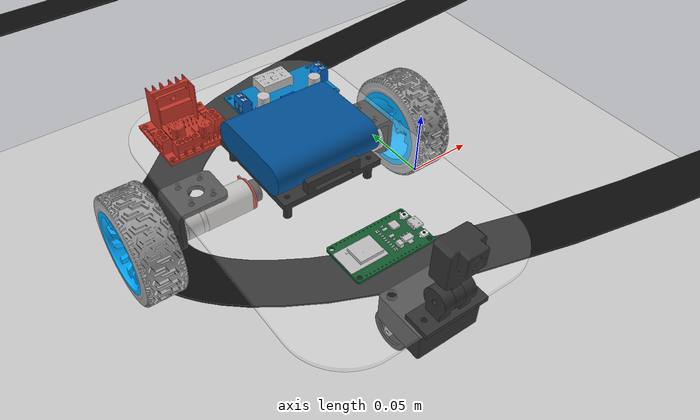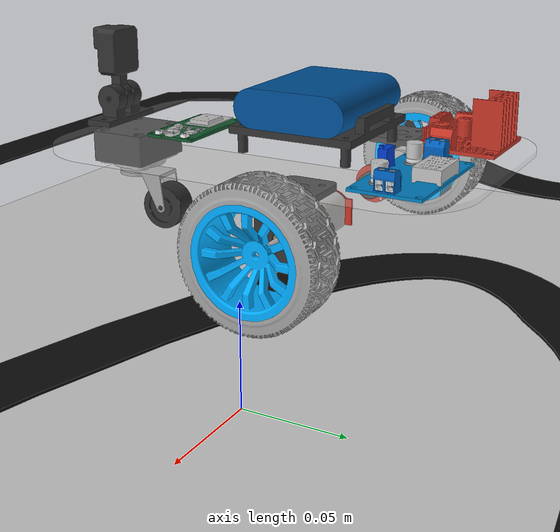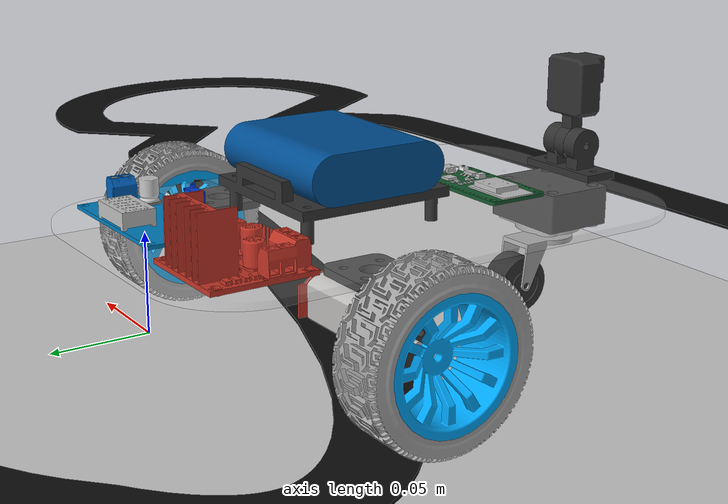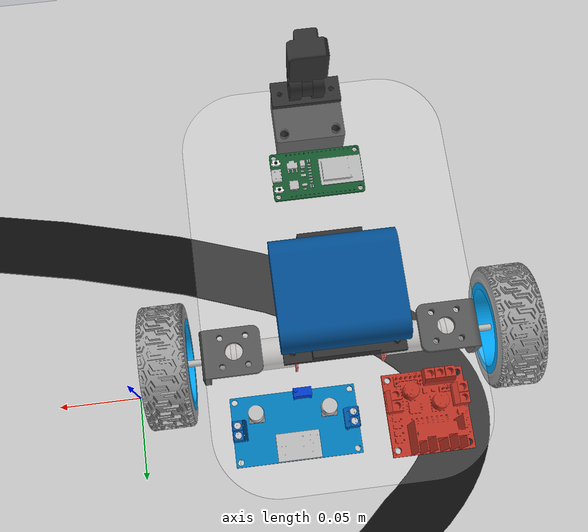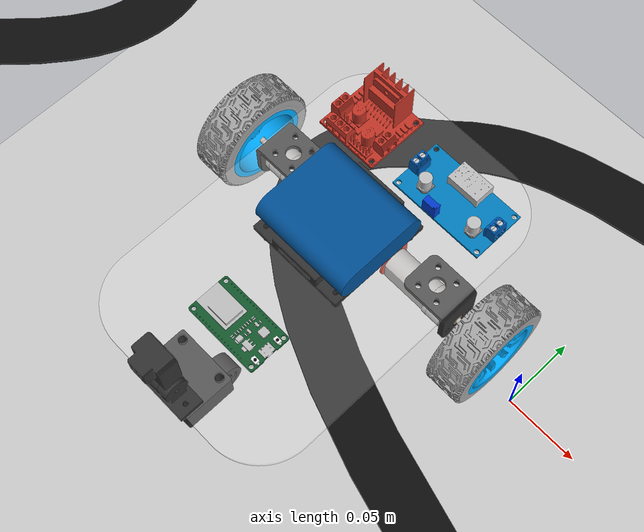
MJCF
<mujoco model="rover_MediumCompTrack">
  <!-- Rover body/mesh/joint/camera tree compiled from rover.urdf -->
  <include file="rover.xml"/>
  <!-- Track converted from the Webots PROTO by scripts/import_webots_track.py -->
  <include file="../../objects/tracks/MediumCompTrack.xml"/>

  <option integrator="implicitfast"/>

  <asset>
    <texture name="skybox" type="skybox" builtin="gradient"
             rgb1="0.75 0.80 0.86" rgb2="0.55 0.62 0.70" width="256" height="256"/>
  </asset>

  <worldbody>
    <light diffuse=".8 .8 .8" pos="0 0 3" dir="0 0 -1"/>
    <geom name="floor" type="plane" size="6 6 0.1" rgba=".8 .8 .8 1"/>
  </worldbody>

  <sensor>
    <!-- Declared so MuJoCo's viewer can plot them live, and so read_telemetry() works on every
         track scene rather than only the generated ones. -->
    <jointvel name="left_wheel_speed" joint="left_axle"/>
    <jointvel name="right_wheel_speed" joint="right_axle"/>
    <velocimeter name="base_velocity" site="base_imu"/>
  </sensor>

  <actuator>
    <velocity name="left_wheel_motor" joint="left_axle" kv="0.2" ctrlrange="-10 10"/>
    <velocity name="right_wheel_motor" joint="right_axle" kv="0.2" ctrlrange="-10 10"/>
  </actuator>
</mujoco>

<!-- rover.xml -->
<!-- Generated using onshape-to-robot -->
<!-- Onshape https://cad.onshape.com/documents/b96fba38d2ae45c4cf890061/w/5fb0397f3be015e9540849c1/e/012331fafbc1f855042645e5 -->
<mujoco model="C:\Users\rapan\OneDrive\Documents\mujoco\rover">
  <compiler angle="radian" meshdir="meshes" autolimits="true"/>
  <default>
    <default class="C:\Users\rapan\OneDrive\Documents\mujoco\rover">
      <joint frictionloss="0.1" armature="0.005"/>
      <position kp="50" dampratio="1"/>
      <default class="visual">
        <geom type="mesh" contype="0" conaffinity="0" group="2"/>
      </default>
      <default class="collision">
        <geom group="3"/>
      </default>
    </default>
  </default>
  <worldbody>
    <!-- Link tt_motor -->
    <body name="tt_motor" pos="0 0 0" quat="1 0 0 0" childclass="C:\Users\rapan\OneDrive\Documents\mujoco\rover">
      <freejoint name="tt_motor_freejoint"/>
      <inertial pos="-0.121228 -0.032057 0.105597" mass="0.130393" fullinertia="0.000131571 5.33375e-05 0.000170509 1.35524e-07 1.6807e-08 -9.70242e-06"/>
      <!-- Part bracket -->
      <geom name="bracket_visual" type="mesh" class="visual" pos="-0.151412 0.03104 0.081501" quat="0.707107 0.707107 0.000612456 0.000612456" mesh="bracket" material="bracket_material"/>
      <!-- Part battery_pack -->
      <geom name="battery_pack_visual" type="mesh" class="visual" pos="-0.0878099 0.015028 0.166514" quat="0.500433 -0.499567 -0.500433 -0.499567" mesh="battery_pack" material="battery_pack_material"/>
      <!-- Part bracket_2 -->
      <geom name="bracket_2_visual" type="mesh" class="visual" pos="-0.0911337 -0.0440308 0.081501" quat="0.000612456 0.000612456 -0.707107 -0.707107" mesh="bracket" material="bracket_material"/>
      <!-- Part camera_stand -->
      <geom name="camera_stand_visual" type="mesh" class="visual" pos="-0.163787 -0.135933 0.087601" quat="0.707107 -0.707107 -0.000612456 0.000612456" mesh="camera_stand" material="camera_stand_material"/>
      <!-- Part acrylic_body -->
      <geom name="acrylic_body_visual" type="mesh" class="visual" pos="-0.121212 -0.0414953 0.081501" quat="0.000866143 -0 -0 -1" mesh="acrylic_body" material="acrylic_body_material"/>
      <!-- Part motor_driver -->
      <geom name="motor_driver_visual" type="mesh" class="visual" pos="-0.160759 0.0612642 0.104987" quat="1 -0 -0 0.000866143" mesh="motor_driver" material="pcb_1__body1_material"/>
      <!-- Part caster_block -->
      <geom name="caster_block_visual" type="mesh" class="visual" pos="-0.230802 -0.113432 0.081501" quat="0.707107 0.707107 0.000612456 0.000612456" mesh="caster_block" material="caster_block_material"/>
      <!-- Part caster_wheel_base -->
      <geom name="caster_wheel_base_visual" type="mesh" class="visual" pos="-0.16218 -0.197783 0.063401" quat="0.707107 0.707107 0.000612456 0.000612456" mesh="caster_wheel_base" material="caster_wheel_base_material"/>
      <!-- Part battery_holder -->
      <geom name="battery_holder_visual" type="mesh" class="visual" pos="-0.158349 0.00955964 0.094501" quat="0.500433 -0.500433 0.499567 -0.499567" mesh="battery_holder" material="battery_holder_material"/>
      <!-- Part microchip_2 -->
      <geom name="microchip_2_visual" type="mesh" class="visual" pos="-0.122066 -0.0966969 0.084449" quat="0.499567 0.499567 0.500433 0.500433" mesh="microchip_2" material="microchip_2_material"/>
      <!-- Part transistor_3_leg2_2 -->
      <geom name="transistor_3_leg2_2_visual" type="mesh" class="visual" pos="-0.105827 -0.113829 0.084449" quat="0.000612456 0.000612456 -0.707107 -0.707107" mesh="transistor_3_leg2_2" material="transistor_3_leg2_2_material"/>
      <!-- Part resistor1_2 -->
      <geom name="resistor1_2_visual" type="mesh" class="visual" pos="-0.118302 -0.10514 0.08445" quat="0.499567 0.499567 0.500433 0.500433" mesh="resistor1_2" material="resistor1_2_material"/>
      <!-- Part resistor2_32_2 -->
      <geom name="resistor2_32_2_visual" type="mesh" class="visual" pos="-0.126596 -0.108205 0.08445" quat="0.499567 0.499567 0.500433 0.500433" mesh="resistor2_32_2" material="resistor2_32_2_material"/>
      <!-- Part resistor1_2_2 -->
      <geom name="resistor1_2_2_visual" type="mesh" class="visual" pos="-0.118328 -0.0899404 0.08445" quat="0.499567 0.499567 0.500433 0.500433" mesh="resistor1_2" material="resistor1_2_material"/>
      <!-- Part tanchip_2 -->
      <geom name="tanchip_2_visual" type="mesh" class="visual" pos="-0.105955 -0.103219 0.084449" quat="0.707107 0.707107 0.000612456 0.000612456" mesh="tanchip_2" material="tanchip_2_material"/>
      <!-- Part resistor1_2_3 -->
      <geom name="resistor1_2_3_visual" type="mesh" class="visual" pos="-0.121308 -0.101396 0.08445" quat="0.000612456 0.000612456 -0.707107 -0.707107" mesh="resistor1_2" material="resistor1_2_material"/>
      <!-- Part resistor1_2_4 -->
      <geom name="resistor1_2_4_visual" type="mesh" class="visual" pos="-0.121299 -0.106646 0.08445" quat="0.000612456 0.000612456 -0.707107 -0.707107" mesh="resistor1_2" material="resistor1_2_material"/>
      <!-- Part resistor1_2_5 -->
      <geom name="resistor1_2_5_visual" type="mesh" class="visual" pos="-0.121302 -0.104896 0.08445" quat="0.000612456 0.000612456 -0.707107 -0.707107" mesh="resistor1_2" material="resistor1_2_material"/>
      <!-- Part resistor2_32_2_2 -->
      <geom name="resistor2_32_2_2_visual" type="mesh" class="visual" pos="-0.126615 -0.0977048 0.08445" quat="0.499567 0.499567 0.500433 0.500433" mesh="resistor2_32_2" material="resistor2_32_2_material"/>
      <!-- Part resistor1_2_6 -->
      <geom name="resistor1_2_6_visual" type="mesh" class="visual" pos="-0.117221 -0.0941385 0.08445" quat="0.000612456 0.000612456 -0.707107 -0.707107" mesh="resistor1_2" material="resistor1_2_material"/>
      <!-- Part pcb -->
      <geom name="pcb_visual" type="mesh" class="visual" pos="-0.0953081 -0.101476 0.084501" quat="0.500433 -0.499567 -0.500433 -0.499567" mesh="pcb" material="green_pcb"/>
      <!-- Part resistor1_2_7 -->
      <geom name="resistor1_2_7_visual" type="mesh" class="visual" pos="-0.119502 -0.105142 0.08445" quat="0.499567 0.499567 0.500433 0.500433" mesh="resistor1_2" material="resistor1_2_material"/>
      <!-- Part resistor1_2_8 -->
      <geom name="resistor1_2_8_visual" type="mesh" class="visual" pos="-0.121305 -0.103146 0.08445" quat="0.000612456 0.000612456 -0.707107 -0.707107" mesh="resistor1_2" material="resistor1_2_material"/>
      <!-- Part transistor_3_leg_2 -->
      <geom name="transistor_3_leg_2_visual" type="mesh" class="visual" pos="-0.105808 -0.101469 0.084449" quat="0.000612456 0.000612456 -0.707107 -0.707107" mesh="transistor_3_leg_2" material="transistor_3_leg_2_material"/>
      <!-- Part rectangularchip_2 -->
      <geom name="rectangularchip_2_visual" type="mesh" class="visual" pos="-0.103651 -0.105315 0.08445" quat="0.500433 0.500433 -0.499567 -0.499567" mesh="rectangularchip_2" material="rectangularchip_2_material"/>
      <!-- Part resistor1_2_9 -->
      <geom name="resistor1_2_9_visual" type="mesh" class="visual" pos="-0.121311 -0.0996456 0.08445" quat="0.000612456 0.000612456 -0.707107 -0.707107" mesh="resistor1_2" material="resistor1_2_material"/>
      <!-- Part resistor1_2_10 -->
      <geom name="resistor1_2_10_visual" type="mesh" class="visual" pos="-0.117202 -0.104888 0.08445" quat="0.000612456 0.000612456 -0.707107 -0.707107" mesh="resistor1_2" material="resistor1_2_material"/>
      <!-- Part wifi_card_2 -->
      <geom name="wifi_card_2_visual" type="mesh" class="visual" pos="-0.122483 -0.101523 0.084446" quat="0.499567 0.499567 0.500433 0.500433" mesh="wifi_card_2" material="wifi_card_2_material"/>
      <!-- Part resistor1_2_11 -->
      <geom name="resistor1_2_11_visual" type="mesh" class="visual" pos="-0.119528 -0.0899425 0.08445" quat="0.499567 0.499567 0.500433 0.500433" mesh="resistor1_2" material="resistor1_2_material"/>
      <!-- Part 3_digit_7_segment_display__lm2596_buck_converter_4_0_40_to_1_3_37v__lpattern3 -->
      <geom name="3_digit_7_segment_display__lm2596_buck_converter_4_0_40_to_1_3_37v__lpattern3_visual" type="mesh" class="visual" pos="-0.0912555 0.0485567 0.093301" quat="0.000612456 0.000612456 -0.707107 -0.707107" mesh="3_digit_7_segment_display__lm2596_buck_converter_4_0_40_to_1_3_37v__lpattern3" material="3_digit_7_segment_display__lm2596_buck_converter_4_0_40_to_1_3_37v__lpattern3_material"/>
      <!-- Part trimpot_3296w__lm2596_buck_converter_4_0_40_to_1_3_37v_valor_predeterminado__ressalto_extruso3 -->
      <geom name="trimpot_3296w__lm2596_buck_converter_4_0_40_to_1_3_37v_valor_predeterminado__ressalto_extruso3_visual" type="mesh" class="visual" pos="-0.0964444 0.0219627 0.086101" quat="1 0 -0 0.000866143" mesh="trimpot_3296w__lm2596_buck_converter_4_0_40_to_1_3_37v_valor_predeterminado__ressalto_extruso3" material="trimpot_3296w__lm2596_buck_converter_4_0_40_to_1_3_37v_valor_predeterminado__ressalto_extruso3_material"/>
      <!-- Part base___lm2596_buck_converter_4_0_40_to_1_3_37v__mirror2 -->
      <geom name="base___lm2596_buck_converter_4_0_40_to_1_3_37v__mirror2_visual" type="mesh" class="visual" pos="-0.0912364 0.0375567 0.084501" quat="0.000612456 0.000612456 -0.707107 -0.707107" mesh="base___lm2596_buck_converter_4_0_40_to_1_3_37v__mirror2" material="base___lm2596_buck_converter_4_0_40_to_1_3_37v__mirror2_material"/>
      <!-- Part gear_box_bottom_1__body1 -->
      <geom name="gear_box_bottom_1__body1_visual" type="mesh" class="visual" pos="-0.147035 -0.00654 0.061151" quat="0.000612456 0.707107 0.000612456 -0.707107" mesh="gear_box_bottom_1__body1" material="gear_box_bottom_1__body1_material"/>
      <!-- Part pcb_1__body1 -->
      <geom name="pcb_1__body1_visual" type="mesh" class="visual" pos="-0.148535 -0.0065426 0.061151" quat="0.000612456 0.707107 0.000612456 -0.707107" mesh="pcb_1__body1" material="pcb_1__body1_material"/>
      <!-- Part gear_box_top_1__body1 -->
      <geom name="gear_box_top_1__body1_visual" type="mesh" class="visual" pos="-0.147035 -0.00654 0.061151" quat="0.000612456 0.707107 0.000612456 -0.707107" mesh="gear_box_top_1__body1" material="gear_box_top_1__body1_material"/>
      <!-- Part shaft_1__body1 -->
      <geom name="shaft_1__body1_visual" type="mesh" class="visual" pos="-0.148635 -0.00654278 0.061151" quat="0.000612456 0.707107 0.000612456 -0.707107" mesh="shaft_1__body1" material="shaft_1__body1_material"/>
      <!-- Part magnet_1__body1 -->
      <geom name="magnet_1__body1_visual" type="mesh" class="visual" pos="-0.148935 -0.0065433 0.061151" quat="0.000612456 0.707107 0.000612456 -0.707107" mesh="magnet_1__body1" material="magnet_1__body1_material"/>
      <!-- Part 92000a001_passivated_18_8_stainless_steel_pan_head_phillips_screws_1__body1 -->
      <geom name="92000a001_passivated_18_8_stainless_steel_pan_head_phillips_screws_1__body1_visual" type="mesh" class="visual" pos="-0.192788 0.00154075 0.061171" quat="0.000612456 0.707107 0.000612456 -0.707107" mesh="92000a001_passivated_18_8_stainless_steel_pan_head_phillips_screws_1__body1" material="92000a001_passivated_18_8_stainless_steel_pan_head_phillips_screws_1__body1_material"/>
      <!-- Part rotor_holding_1__body1 -->
      <geom name="rotor_holding_1__body1_visual" type="mesh" class="visual" pos="-0.147035 -0.00654 0.061151" quat="0.000612456 0.707107 0.000612456 -0.707107" mesh="rotor_holding_1__body1" material="rotor_holding_1__body1_material"/>
      <!-- Part motor_1__body1 -->
      <geom name="motor_1__body1_visual" type="mesh" class="visual" pos="-0.147035 -0.00654 0.061151" quat="0.000612456 0.707107 0.000612456 -0.707107" mesh="motor_1__body1" material="motor_1__body1_material"/>
      <!-- Part gear_box_center_1__body1 -->
      <geom name="gear_box_center_1__body1_visual" type="mesh" class="visual" pos="-0.147035 -0.00654 0.061151" quat="0.000612456 0.707107 0.000612456 -0.707107" mesh="gear_box_center_1__body1" material="gear_box_center_1__body1_material"/>
      <!-- Part 92000a001_passivated_18_8_stainless_steel_pan_head_phillips_screws_1__body1_2 -->
      <geom name="92000a001_passivated_18_8_stainless_steel_pan_head_phillips_screws_1__body1_2_visual" type="mesh" class="visual" pos="-0.192721 -0.0147792 0.061151" quat="0.000612456 0.707107 0.000612456 -0.707107" mesh="92000a001_passivated_18_8_stainless_steel_pan_head_phillips_screws_1__body1" material="92000a001_passivated_18_8_stainless_steel_pan_head_phillips_screws_1__body1_material"/>
      <!-- Part rotor_1__body1 -->
      <geom name="rotor_1__body1_visual" type="mesh" class="visual" pos="-0.150196 -0.00628548 0.061151" quat="0.000612456 0.707107 0.000612456 -0.707107" mesh="rotor_1__body1" material="rotor_1__body1_material"/>
      <!-- Part gear_box_bottom_1__body1_2 -->
      <geom name="gear_box_bottom_1__body1_2_visual" type="mesh" class="visual" pos="-0.0955102 -0.00645075 0.061151" quat="0.000612456 -0.707107 -0.000612456 -0.707107" mesh="gear_box_bottom_1__body1" material="gear_box_bottom_1__body1_material"/>
      <!-- Part pcb_1__body1_2 -->
      <geom name="pcb_1__body1_2_visual" type="mesh" class="visual" pos="-0.0940102 -0.00644815 0.061151" quat="0.000612456 -0.707107 -0.000612456 -0.707107" mesh="pcb_1__body1" material="pcb_1__body1_material"/>
      <!-- Part gear_box_top_1__body1_2 -->
      <geom name="gear_box_top_1__body1_2_visual" type="mesh" class="visual" pos="-0.0955102 -0.00645075 0.061151" quat="0.000612456 -0.707107 -0.000612456 -0.707107" mesh="gear_box_top_1__body1" material="gear_box_top_1__body1_material"/>
      <!-- Part shaft_1__body1_2 -->
      <geom name="shaft_1__body1_2_visual" type="mesh" class="visual" pos="-0.0939102 -0.00644798 0.061151" quat="0.000612456 -0.707107 -0.000612456 -0.707107" mesh="shaft_1__body1" material="shaft_1__body1_material"/>
      <!-- Part magnet_1__body1_2 -->
      <geom name="magnet_1__body1_2_visual" type="mesh" class="visual" pos="-0.0936102 -0.00644746 0.061151" quat="0.000612456 -0.707107 -0.000612456 -0.707107" mesh="magnet_1__body1" material="magnet_1__body1_material"/>
      <!-- Part 92000a001_passivated_18_8_stainless_steel_pan_head_phillips_screws_1__body1_3 -->
      <geom name="92000a001_passivated_18_8_stainless_steel_pan_head_phillips_screws_1__body1_3_visual" type="mesh" class="visual" pos="-0.0497851 0.00178847 0.061131" quat="0.000612456 -0.707107 -0.000612456 -0.707107" mesh="92000a001_passivated_18_8_stainless_steel_pan_head_phillips_screws_1__body1" material="92000a001_passivated_18_8_stainless_steel_pan_head_phillips_screws_1__body1_material"/>
      <!-- Part rotor_holding_1__body1_2 -->
      <geom name="rotor_holding_1__body1_2_visual" type="mesh" class="visual" pos="-0.0955102 -0.00645075 0.061151" quat="0.000612456 -0.707107 -0.000612456 -0.707107" mesh="rotor_holding_1__body1" material="rotor_holding_1__body1_material"/>
      <!-- Part motor_1__body1_2 -->
      <geom name="motor_1__body1_2_visual" type="mesh" class="visual" pos="-0.0955102 -0.00645075 0.061151" quat="0.000612456 -0.707107 -0.000612456 -0.707107" mesh="motor_1__body1" material="motor_1__body1_material"/>
      <!-- Part gear_box_center_1__body1_2 -->
      <geom name="gear_box_center_1__body1_2_visual" type="mesh" class="visual" pos="-0.0955102 -0.00645075 0.061151" quat="0.000612456 -0.707107 -0.000612456 -0.707107" mesh="gear_box_center_1__body1" material="gear_box_center_1__body1_material"/>
      <!-- Part 92000a001_passivated_18_8_stainless_steel_pan_head_phillips_screws_1__body1_4 -->
      <geom name="92000a001_passivated_18_8_stainless_steel_pan_head_phillips_screws_1__body1_4_visual" type="mesh" class="visual" pos="-0.0497961 -0.0145316 0.061151" quat="0.000612456 -0.707107 -0.000612456 -0.707107" mesh="92000a001_passivated_18_8_stainless_steel_pan_head_phillips_screws_1__body1" material="92000a001_passivated_18_8_stainless_steel_pan_head_phillips_screws_1__body1_material"/>
      <!-- Part rotor_1__body1_2 -->
      <geom name="rotor_1__body1_2_visual" type="mesh" class="visual" pos="-0.0923506 -0.00618528 0.061151" quat="0.000612456 -0.707107 -0.000612456 -0.707107" mesh="rotor_1__body1" material="rotor_1__body1_material"/>
      <!-- Part usb_socket_2 -->
      <geom name="usb_socket_2_visual" type="mesh" class="visual" pos="-0.119718 -0.101518 0.084441" quat="0.499567 0.499567 0.500433 0.500433" mesh="usb_socket_2" material="usb_socket_2_material"/>
      <!-- Part usb_socket_2_2 -->
      <geom name="usb_socket_2_2_visual" type="mesh" class="visual" pos="-0.119718 -0.101518 0.084441" quat="0.499567 0.499567 0.500433 0.500433" mesh="usb_socket_2__2" material="usb_socket_2__2_material"/>
      <!-- Part usb_socket_2_3 -->
      <geom name="usb_socket_2_3_visual" type="mesh" class="visual" pos="-0.119718 -0.101518 0.084441" quat="0.499567 0.499567 0.500433 0.500433" mesh="usb_socket_2__3" material="usb_socket_2__3_material"/>
      <!-- Part buttonflash_13_2 -->
      <geom name="buttonflash_13_2_visual" type="mesh" class="visual" pos="-0.119683 -0.115843 0.084501" quat="0.499567 0.499567 0.500433 0.500433" mesh="buttonflash_13_2" material="buttonflash_13_2_material"/>
      <!-- Part buttonflash_14_2 -->
      <geom name="buttonflash_14_2_visual" type="mesh" class="visual" pos="-0.119683 -0.115843 0.084501" quat="0.499567 0.499567 0.500433 0.500433" mesh="buttonflash_14_2" material="buttonflash_14_2_material"/>
      <!-- Part buttonflash_13_2_2 -->
      <geom name="buttonflash_13_2_2_visual" type="mesh" class="visual" pos="-0.119711 -0.0996928 0.084501" quat="0.499567 0.499567 0.500433 0.500433" mesh="buttonflash_13_2" material="buttonflash_13_2_material"/>
      <!-- Part buttonflash_14_2_2 -->
      <geom name="buttonflash_14_2_2_visual" type="mesh" class="visual" pos="-0.119711 -0.0996928 0.084501" quat="0.499567 0.499567 0.500433 0.500433" mesh="buttonflash_14_2" material="buttonflash_14_2_material"/>
      <!-- Part dg301_5_0_02__lm2596_buck_converter_4_0_40_to_1_3_37v__imported_3_2_solid1 -->
      <geom name="dg301_5_0_02__lm2596_buck_converter_4_0_40_to_1_3_37v__imported_3_2_solid1_visual" type="mesh" class="visual" pos="-0.0613321 0.0351085 0.086101" quat="0.706494 -0 0 0.707719" mesh="dg301_5_0_02__lm2596_buck_converter_4_0_40_to_1_3_37v__imported_3_2_solid1" material="dg301_5_0_02__lm2596_buck_converter_4_0_40_to_1_3_37v__imported_3_2_solid1_material"/>
      <!-- Part dg301_5_0_02__lm2596_buck_converter_4_0_40_to_1_3_37v__imported_3_1_solid1 -->
      <geom name="dg301_5_0_02__lm2596_buck_converter_4_0_40_to_1_3_37v__imported_3_1_solid1_visual" type="mesh" class="visual" pos="-0.0613321 0.0351085 0.086101" quat="0.706494 -0 0 0.707719" mesh="dg301_5_0_02__lm2596_buck_converter_4_0_40_to_1_3_37v__imported_3_1_solid1" material="dg301_5_0_02__lm2596_buck_converter_4_0_40_to_1_3_37v__imported_3_1_solid1_material"/>
      <!-- Part dg301_5_0_02__lm2596_buck_converter_4_0_40_to_1_3_37v__imported_4_2_solid1 -->
      <geom name="dg301_5_0_02__lm2596_buck_converter_4_0_40_to_1_3_37v__imported_4_2_solid1_visual" type="mesh" class="visual" pos="-0.0613321 0.0351085 0.086101" quat="0.706494 -0 0 0.707719" mesh="dg301_5_0_02__lm2596_buck_converter_4_0_40_to_1_3_37v__imported_4_2_solid1" material="dg301_5_0_02__lm2596_buck_converter_4_0_40_to_1_3_37v__imported_4_2_solid1_material"/>
      <!-- Part dg301_5_0_02__lm2596_buck_converter_4_0_40_to_1_3_37v__imported_2_2_solid1 -->
      <geom name="dg301_5_0_02__lm2596_buck_converter_4_0_40_to_1_3_37v__imported_2_2_solid1_visual" type="mesh" class="visual" pos="-0.0613321 0.0351085 0.086101" quat="0.706494 -0 0 0.707719" mesh="dg301_5_0_02__lm2596_buck_converter_4_0_40_to_1_3_37v__imported_2_2_solid1" material="dg301_5_0_02__lm2596_buck_converter_4_0_40_to_1_3_37v__imported_2_2_solid1_material"/>
      <!-- Part dg301_5_0_02__lm2596_buck_converter_4_0_40_to_1_3_37v__imported_1_solid1 -->
      <geom name="dg301_5_0_02__lm2596_buck_converter_4_0_40_to_1_3_37v__imported_1_solid1_visual" type="mesh" class="visual" pos="-0.0613321 0.0351085 0.086101" quat="0.706494 -0 0 0.707719" mesh="dg301_5_0_02__lm2596_buck_converter_4_0_40_to_1_3_37v__imported_1_solid1" material="dg301_5_0_02__lm2596_buck_converter_4_0_40_to_1_3_37v__imported_1_solid1_material"/>
      <!-- Part dg301_5_0_02__lm2596_buck_converter_4_0_40_to_1_3_37v__imported_2_1_solid1 -->
      <geom name="dg301_5_0_02__lm2596_buck_converter_4_0_40_to_1_3_37v__imported_2_1_solid1_visual" type="mesh" class="visual" pos="-0.0613321 0.0351085 0.086101" quat="0.706494 -0 0 0.707719" mesh="dg301_5_0_02__lm2596_buck_converter_4_0_40_to_1_3_37v__imported_2_1_solid1" material="dg301_5_0_02__lm2596_buck_converter_4_0_40_to_1_3_37v__imported_2_1_solid1_material"/>
      <!-- Part dg301_5_0_02__lm2596_buck_converter_4_0_40_to_1_3_37v__imported_4_1_solid1 -->
      <geom name="dg301_5_0_02__lm2596_buck_converter_4_0_40_to_1_3_37v__imported_4_1_solid1_visual" type="mesh" class="visual" pos="-0.0613321 0.0351085 0.086101" quat="0.706494 -0 0 0.707719" mesh="dg301_5_0_02__lm2596_buck_converter_4_0_40_to_1_3_37v__imported_4_1_solid1" material="dg301_5_0_02__lm2596_buck_converter_4_0_40_to_1_3_37v__imported_4_1_solid1_material"/>
      <!-- Part 220_35v_capacitor__lm2596_buck_converter_4_0_40_to_1_3_37v__chamfer1 -->
      <geom name="220_35v_capacitor__lm2596_buck_converter_4_0_40_to_1_3_37v__chamfer1_visual" type="mesh" class="visual" pos="-0.109475 0.0306751 0.086101" quat="0.000612456 0.000612456 -0.707107 -0.707107" mesh="220_35v_capacitor__lm2596_buck_converter_4_0_40_to_1_3_37v__chamfer1" material="220_35v_capacitor__lm2596_buck_converter_4_0_40_to_1_3_37v__chamfer1_material"/>
      <!-- Part 220_35v_capacitor__lm2596_buck_converter_4_0_40_to_1_3_37v__fillet2 -->
      <geom name="220_35v_capacitor__lm2596_buck_converter_4_0_40_to_1_3_37v__fillet2_visual" type="mesh" class="visual" pos="-0.109475 0.0306751 0.086101" quat="0.000612456 0.000612456 -0.707107 -0.707107" mesh="220_35v_capacitor__lm2596_buck_converter_4_0_40_to_1_3_37v__fillet2" material="220_35v_capacitor__lm2596_buck_converter_4_0_40_to_1_3_37v__fillet2_material"/>
      <!-- Part 220_35v_capacitor__lm2596_buck_converter_4_0_40_to_1_3_37v__chamfer1_2 -->
      <geom name="220_35v_capacitor__lm2596_buck_converter_4_0_40_to_1_3_37v__chamfer1_2_visual" type="mesh" class="visual" pos="-0.0713729 0.0297411 0.086101" quat="0.000612456 0.000612456 -0.707107 -0.707107" mesh="220_35v_capacitor__lm2596_buck_converter_4_0_40_to_1_3_37v__chamfer1" material="220_35v_capacitor__lm2596_buck_converter_4_0_40_to_1_3_37v__chamfer1_material"/>
      <!-- Part 220_35v_capacitor__lm2596_buck_converter_4_0_40_to_1_3_37v__fillet2_2 -->
      <geom name="220_35v_capacitor__lm2596_buck_converter_4_0_40_to_1_3_37v__fillet2_2_visual" type="mesh" class="visual" pos="-0.0713729 0.0297411 0.086101" quat="0.000612456 0.000612456 -0.707107 -0.707107" mesh="220_35v_capacitor__lm2596_buck_converter_4_0_40_to_1_3_37v__fillet2" material="220_35v_capacitor__lm2596_buck_converter_4_0_40_to_1_3_37v__fillet2_material"/>
      <!-- Part dg301_5_0_02__lm2596_buck_converter_4_0_40_to_1_3_37v__imported_3_2_solid1_2 -->
      <geom name="dg301_5_0_02__lm2596_buck_converter_4_0_40_to_1_3_37v__imported_3_2_solid1_2_visual" type="mesh" class="visual" pos="-0.121141 0.0400049 0.086101" quat="0.707719 0 0 -0.706494" mesh="dg301_5_0_02__lm2596_buck_converter_4_0_40_to_1_3_37v__imported_3_2_solid1" material="dg301_5_0_02__lm2596_buck_converter_4_0_40_to_1_3_37v__imported_3_2_solid1_material"/>
      <!-- Part dg301_5_0_02__lm2596_buck_converter_4_0_40_to_1_3_37v__imported_3_1_solid1_2 -->
      <geom name="dg301_5_0_02__lm2596_buck_converter_4_0_40_to_1_3_37v__imported_3_1_solid1_2_visual" type="mesh" class="visual" pos="-0.121141 0.0400049 0.086101" quat="0.707719 0 0 -0.706494" mesh="dg301_5_0_02__lm2596_buck_converter_4_0_40_to_1_3_37v__imported_3_1_solid1" material="dg301_5_0_02__lm2596_buck_converter_4_0_40_to_1_3_37v__imported_3_1_solid1_material"/>
      <!-- Part dg301_5_0_02__lm2596_buck_converter_4_0_40_to_1_3_37v__imported_4_2_solid1_2 -->
      <geom name="dg301_5_0_02__lm2596_buck_converter_4_0_40_to_1_3_37v__imported_4_2_solid1_2_visual" type="mesh" class="visual" pos="-0.121141 0.0400049 0.086101" quat="0.707719 0 0 -0.706494" mesh="dg301_5_0_02__lm2596_buck_converter_4_0_40_to_1_3_37v__imported_4_2_solid1" material="dg301_5_0_02__lm2596_buck_converter_4_0_40_to_1_3_37v__imported_4_2_solid1_material"/>
      <!-- Part dg301_5_0_02__lm2596_buck_converter_4_0_40_to_1_3_37v__imported_2_2_solid1_2 -->
      <geom name="dg301_5_0_02__lm2596_buck_converter_4_0_40_to_1_3_37v__imported_2_2_solid1_2_visual" type="mesh" class="visual" pos="-0.121141 0.0400049 0.086101" quat="0.707719 0 0 -0.706494" mesh="dg301_5_0_02__lm2596_buck_converter_4_0_40_to_1_3_37v__imported_2_2_solid1" material="dg301_5_0_02__lm2596_buck_converter_4_0_40_to_1_3_37v__imported_2_2_solid1_material"/>
      <!-- Part dg301_5_0_02__lm2596_buck_converter_4_0_40_to_1_3_37v__imported_1_solid1_2 -->
      <geom name="dg301_5_0_02__lm2596_buck_converter_4_0_40_to_1_3_37v__imported_1_solid1_2_visual" type="mesh" class="visual" pos="-0.121141 0.0400049 0.086101" quat="0.707719 0 0 -0.706494" mesh="dg301_5_0_02__lm2596_buck_converter_4_0_40_to_1_3_37v__imported_1_solid1" material="dg301_5_0_02__lm2596_buck_converter_4_0_40_to_1_3_37v__imported_1_solid1_material"/>
      <!-- Part dg301_5_0_02__lm2596_buck_converter_4_0_40_to_1_3_37v__imported_2_1_solid1_2 -->
      <geom name="dg301_5_0_02__lm2596_buck_converter_4_0_40_to_1_3_37v__imported_2_1_solid1_2_visual" type="mesh" class="visual" pos="-0.121141 0.0400049 0.086101" quat="0.707719 0 0 -0.706494" mesh="dg301_5_0_02__lm2596_buck_converter_4_0_40_to_1_3_37v__imported_2_1_solid1" material="dg301_5_0_02__lm2596_buck_converter_4_0_40_to_1_3_37v__imported_2_1_solid1_material"/>
      <!-- Part dg301_5_0_02__lm2596_buck_converter_4_0_40_to_1_3_37v__imported_4_1_solid1_2 -->
      <geom name="dg301_5_0_02__lm2596_buck_converter_4_0_40_to_1_3_37v__imported_4_1_solid1_2_visual" type="mesh" class="visual" pos="-0.121141 0.0400049 0.086101" quat="0.707719 0 0 -0.706494" mesh="dg301_5_0_02__lm2596_buck_converter_4_0_40_to_1_3_37v__imported_4_1_solid1" material="dg301_5_0_02__lm2596_buck_converter_4_0_40_to_1_3_37v__imported_4_1_solid1_material"/>
      <!-- Link tire -->
      <body name="tire" pos="-0.0341205 -0.00622479 0.061151" quat="0.707107 0.000612456 -0.707107 0.000612456">
        <!-- Joint from tt_motor to tire -->
        <joint axis="0 0 1" name="left_axle" type="hinge"/>
        <inertial pos="0 0 0" mass="1e-09" fullinertia="1e-09 1e-09 1e-09 0 0 0"/>
        <!-- Part tire -->
        <geom name="tire_visual" type="mesh" class="visual" pos="0 0 0.004" quat="0 0 -1 -0" mesh="tire" material="tire_material"/>
        <geom name="tire_collision" type="cylinder" class="collision" size="0.0325 0.013" material="tire_material"/>
        <!-- Part wheel -->
        <geom name="wheel_visual" type="mesh" class="visual" pos="0 0 0.004" quat="0 0 -1 -0" mesh="wheel" material="wheel_material"/>
      </body>
      <!-- Link tire_2 -->
      <body name="tire_2" pos="-0.208425 -0.00652673 0.061151" quat="0.707107 -0.000612456 0.707107 0.000612456">
        <!-- Joint from tt_motor to tire_2 -->
        <joint axis="0 0 1" name="right_axle" type="hinge"/>
        <inertial pos="0 0 0" mass="1e-09" fullinertia="1e-09 1e-09 1e-09 0 0 0"/>
        <!-- Part wheel_2 -->
        <geom name="wheel_2_visual" type="mesh" class="visual" pos="0 0 0.004" quat="0 -0 1 0" mesh="wheel" material="wheel_material"/>
        <!-- Part tire_2 -->
        <geom name="tire_2_visual" type="mesh" class="visual" pos="0 0 0.004" quat="0 -0 1 0" mesh="tire" material="tire_material"/>
        <geom name="tire_2_collision" type="cylinder" class="collision" size="0.0325 0.013" material="tire_material"/>
      </body>
      <!-- Link camera_holder -->
      <body name="camera_holder" pos="-0.118021 -0.15199 0.097676" quat="0.500433 -0.500433 0.499567 -0.499567">
        <!-- Joint from tt_motor to camera_holder -->
        <joint axis="0 0 1" name="camera_hinge" type="hinge"/>
        <inertial pos="0.000848356 -0.022896 -0.0031" mass="0.0109101" fullinertia="1.69216e-06 5.41218e-07 1.54812e-06 8.7232e-08 0 0"/>
        <!-- Part camera_holder -->
        <geom name="camera_holder_visual" type="mesh" class="visual" pos="0.0112623 -0.0510907 -0.0031" quat="0.707107 0.707107 -0 -0" mesh="camera_holder" material="camera_holder_material"/>
      </body>
      <!-- Link caster_wheel_holder -->
      <body name="caster_wheel_holder" pos="-0.121041 -0.140495 0.057401" quat="0.999925 0 0 0.0122628">
        <!-- Joint from tt_motor to caster_wheel_holder -->
        <joint axis="0 0 1" name="front_wheel_holder"/>
        <inertial pos="0 0 0" mass="1e-09" fullinertia="1e-09 1e-09 1e-09 0 0 0"/>
        <!-- Part caster_wheel_holder -->
        <geom name="caster_wheel_holder_visual" type="mesh" class="visual" pos="-0.107773 -0.0103881 -0.002" quat="0.707107 0.707107 -0 0" mesh="caster_wheel_holder" material="caster_wheel_holder_material"/>
        <!-- Link caster_wheel -->
        <body name="caster_wheel" pos="0.0062 0.0185328 -0.019" quat="0 0.707107 0 0.707107">
          <!-- Joint from caster_wheel_holder to caster_wheel -->
          <joint axis="0 0 1" name="front_wheel"/>
          <inertial pos="0 0 0" mass="1e-09" fullinertia="1e-09 1e-09 1e-09 0 0 0"/>
          <!-- Part caster_wheel -->
          <geom name="caster_wheel_visual" type="mesh" class="visual" pos="-0.0850269 0.0450171 -0.0062" quat="0.707107 -0.707107 0 -0" mesh="caster_wheel" material="caster_wheel_material"/>
          <geom name="caster_wheel_collision" type="sphere" class="collision" size="0.012" material="caster_wheel_material"/>
        </body>
      </body>
    </body>
  </worldbody>
  <asset>
    <mesh file="dg301_5_0_02__lm2596_buck_converter_4_0_40_to_1_3_37v__imported_3_1_solid1.stl"/>
    <mesh file="buttonflash_13_2.stl"/>
    <mesh file="caster_wheel_holder.stl"/>
    <mesh file="caster_wheel.stl"/>
    <mesh file="buttonflash_14_2.stl"/>
    <mesh file="battery_pack.stl"/>
    <mesh file="caster_wheel_base.stl"/>
    <mesh file="pcb_1__body1.stl"/>
    <mesh file="usb_socket_2__2.stl"/>
    <mesh file="gear_box_top_1__body1.stl"/>
    <mesh file="dg301_5_0_02__lm2596_buck_converter_4_0_40_to_1_3_37v__imported_2_2_solid1.stl"/>
    <mesh file="gear_box_center_1__body1.stl"/>
    <mesh file="motor_1__body1.stl"/>
    <mesh file="magnet_1__body1.stl"/>
    <mesh file="rectangularchip_2.stl"/>
    <mesh file="camera_stand.stl"/>
    <mesh file="usb_socket_2.stl"/>
    <mesh file="resistor1_2.stl"/>
    <mesh file="resistor2_32_2.stl"/>
    <mesh file="gear_box_bottom_1__body1.stl"/>
    <mesh file="dg301_5_0_02__lm2596_buck_converter_4_0_40_to_1_3_37v__imported_2_1_solid1.stl"/>
    <mesh file="bracket.stl"/>
    <mesh file="220_35v_capacitor__lm2596_buck_converter_4_0_40_to_1_3_37v__chamfer1.stl"/>
    <mesh file="3_digit_7_segment_display__lm2596_buck_converter_4_0_40_to_1_3_37v__lpattern3.stl"/>
    <mesh file="tanchip_2.stl"/>
    <mesh file="wheel.stl"/>
    <mesh file="motor_driver.stl"/>
    <mesh file="trimpot_3296w__lm2596_buck_converter_4_0_40_to_1_3_37v_valor_predeterminado__ressalto_extruso3.stl"/>
    <mesh file="dg301_5_0_02__lm2596_buck_converter_4_0_40_to_1_3_37v__imported_3_2_solid1.stl"/>
    <mesh file="transistor_3_leg_2.stl"/>
    <mesh file="dg301_5_0_02__lm2596_buck_converter_4_0_40_to_1_3_37v__imported_4_2_solid1.stl"/>
    <mesh file="acrylic_body.stl"/>
    <mesh file="tire.stl"/>
    <mesh file="microchip_2.stl"/>
    <mesh file="camera_holder.stl"/>
    <mesh file="rotor_holding_1__body1.stl"/>
    <mesh file="dg301_5_0_02__lm2596_buck_converter_4_0_40_to_1_3_37v__imported_4_1_solid1.stl"/>
    <mesh file="battery_holder.stl"/>
    <mesh file="shaft_1__body1.stl"/>
    <mesh file="rotor_1__body1.stl"/>
    <mesh file="dg301_5_0_02__lm2596_buck_converter_4_0_40_to_1_3_37v__imported_1_solid1.stl"/>
    <mesh file="220_35v_capacitor__lm2596_buck_converter_4_0_40_to_1_3_37v__fillet2.stl"/>
    <mesh file="transistor_3_leg2_2.stl"/>
    <mesh file="usb_socket_2__3.stl"/>
    <mesh file="caster_block.stl"/>
    <mesh file="pcb.stl"/>
    <mesh file="wifi_card_2.stl"/>
    <mesh file="92000a001_passivated_18_8_stainless_steel_pan_head_phillips_screws_1__body1.stl"/>
    <mesh file="base___lm2596_buck_converter_4_0_40_to_1_3_37v__mirror2.stl"/>

    <material name="green_pcb" rgba="0.08 0.35 0.18 1" specular="0.4" shininess="0.3" reflectance="0.1"/>
    <material name="bracket_material" rgba="0.196078 0.196078 0.196078 1"/>
    <material name="battery_pack_material" rgba="0 0.313725 0.588235 1"/>
    <material name="camera_stand_material" rgba="0.196078 0.196078 0.196078 1"/>
    <material name="acrylic_body_material" rgba="1 1 1 0.15" shininess="0.9" specular="0.9" reflectance="0.3"/>
    <material name="motor_driver_material" rgba="0.627451 0.627451 0.627451 1"/>
    <material name="caster_block_material" rgba="0.196078 0.196078 0.196078 1"/>
    <material name="caster_wheel_base_material" rgba="0.647059 0.647059 0.647059 1"/>
    <material name="battery_holder_material" rgba="0.196078 0.196078 0.196078 1"/>
    <material name="microchip_2_material" rgba="0.74902 0.74902 0.74902 1"/>
    <material name="transistor_3_leg2_2_material" rgba="0.74902 0.74902 0.74902 1"/>
    <material name="resistor1_2_material" rgba="0.74902 0.74902 0.74902 1"/>
    <material name="resistor2_32_2_material" rgba="0.74902 0.74902 0.74902 1"/>
    <material name="tanchip_2_material" rgba="0.74902 0.74902 0.74902 1"/>
    <material name="pcb_material" rgba="0.196078 0.196078 0.196078 1"/>
    <material name="transistor_3_leg_2_material" rgba="0.74902 0.74902 0.74902 1"/>
    <material name="rectangularchip_2_material" rgba="0.74902 0.74902 0.74902 1"/>
    <material name="wifi_card_2_material" rgba="0.74902 0.74902 0.74902 1"/>
    <material name="3_digit_7_segment_display__lm2596_buck_converter_4_0_40_to_1_3_37v__lpattern3_material" rgba="0.752941 0.752941 0.752941 1"/>
    <material name="trimpot_3296w__lm2596_buck_converter_4_0_40_to_1_3_37v_valor_predeterminado__ressalto_extruso3_material" rgba="0.00392157 0.235294 0.823529 1"/>

    <material name="base___lm2596_buck_converter_4_0_40_to_1_3_37v__mirror2_material" rgba="0 0.498039 0.752941 1"/>
    <material name="gear_box_bottom_1__body1_material" rgba="0.74902 0.741176 0.733333 1"/>
    <material name="pcb_1__body1_material" rgba="0.768627 0.207843 0.152941 1"/>
    <material name="gear_box_top_1__body1_material" rgba="0.74902 0.741176 0.733333 1"/>
    <material name="shaft_1__body1_material" rgba="0.74902 0.741176 0.733333 1"/>
    <material name="magnet_1__body1_material" rgba="0.247059 0.247059 0.247059 1"/>
    <material name="92000a001_passivated_18_8_stainless_steel_pan_head_phillips_screws_1__body1_material" rgba="0.627451 0.627451 0.627451 1"/>
    <material name="rotor_holding_1__body1_material" rgba="0.607843 0.52549 0.364706 1"/>
    <material name="motor_1__body1_material" rgba="0.74902 0.741176 0.733333 1"/>
    <material name="gear_box_center_1__body1_material" rgba="0.74902 0.741176 0.733333 1"/>
    <material name="rotor_1__body1_material" rgba="0.74902 0.741176 0.733333 1"/>
    <material name="usb_socket_2_material" rgba="0.74902 0.74902 0.74902 1"/>
    <material name="usb_socket_2__2_material" rgba="0.74902 0.74902 0.74902 1"/>
    <material name="usb_socket_2__3_material" rgba="0.74902 0.74902 0.74902 1"/>
    <material name="buttonflash_13_2_material" rgba="0.0196078 0.0196078 0.0196078 1"/>
    <material name="buttonflash_14_2_material" rgba="0.960784 0.960784 0.964706 1"/>
    <material name="dg301_5_0_02__lm2596_buck_converter_4_0_40_to_1_3_37v__imported_3_2_solid1_material" rgba="0.792157 0.8 0.807843 1"/>
    <material name="dg301_5_0_02__lm2596_buck_converter_4_0_40_to_1_3_37v__imported_3_1_solid1_material" rgba="0.792157 0.8 0.807843 1"/>
    <material name="dg301_5_0_02__lm2596_buck_converter_4_0_40_to_1_3_37v__imported_4_2_solid1_material" rgba="0.792157 0.8 0.807843 1"/>
    <material name="dg301_5_0_02__lm2596_buck_converter_4_0_40_to_1_3_37v__imported_2_2_solid1_material" rgba="0.827451 0.831373 0.835294 1"/>
    <material name="dg301_5_0_02__lm2596_buck_converter_4_0_40_to_1_3_37v__imported_1_solid1_material" rgba="0 0.368627 0.721569 1"/>
    <material name="dg301_5_0_02__lm2596_buck_converter_4_0_40_to_1_3_37v__imported_2_1_solid1_material" rgba="0.827451 0.831373 0.835294 1"/>
    <material name="dg301_5_0_02__lm2596_buck_converter_4_0_40_to_1_3_37v__imported_4_1_solid1_material" rgba="0.792157 0.8 0.807843 1"/>
    <material name="220_35v_capacitor__lm2596_buck_converter_4_0_40_to_1_3_37v__chamfer1_material" rgba="0.501961 0.501961 0.501961 1"/>
    <material name="220_35v_capacitor__lm2596_buck_converter_4_0_40_to_1_3_37v__fillet2_material" rgba="0.768627 0.768627 0.768627 1"/>
    <material name="tire_material" rgba="0.647059 0.647059 0.647059 1"/>
    <material name="wheel_material" rgba="0 0.670588 1 1"/>
    <material name="camera_holder_material" rgba="0.196078 0.196078 0.196078 1"/>
    <material name="caster_wheel_holder_material" rgba="0.647059 0.647059 0.647059 1"/>
    <material name="caster_wheel_material" rgba="0.196078 0.196078 0.196078 1"/>
  </asset>
  <actuator>
  </actuator>
  <equality/>
</mujoco>

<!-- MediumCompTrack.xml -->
<mujoco model="MediumCompTrack">
  <asset>
    <mesh name="MediumCompTrack" file="../../objects/tracks/MediumCompTrack.obj" inertia="shell"
          scale="7.5 7.5 7.5"/>
  </asset>
  <worldbody>
    <geom name="line_MediumCompTrack" type="mesh" mesh="MediumCompTrack" quat="1 0 0 0"
          pos="0.0112 0.1076 0.002"
          contype="0" conaffinity="0" group="2" rgba="0.05 0.05 0.05 1"/>
  </worldbody>
</mujoco>
